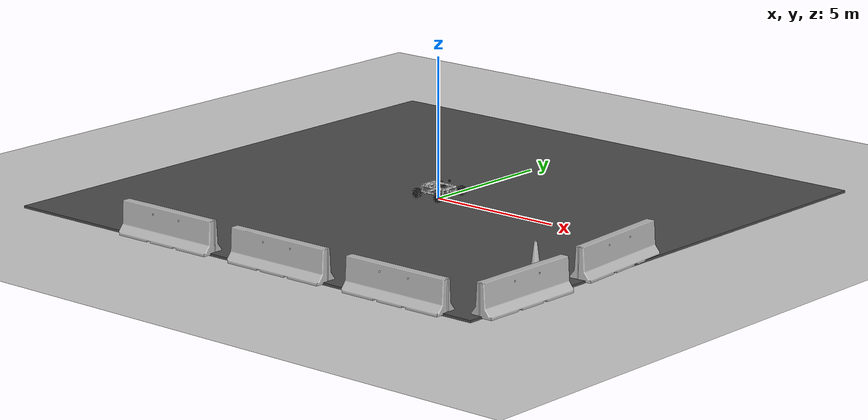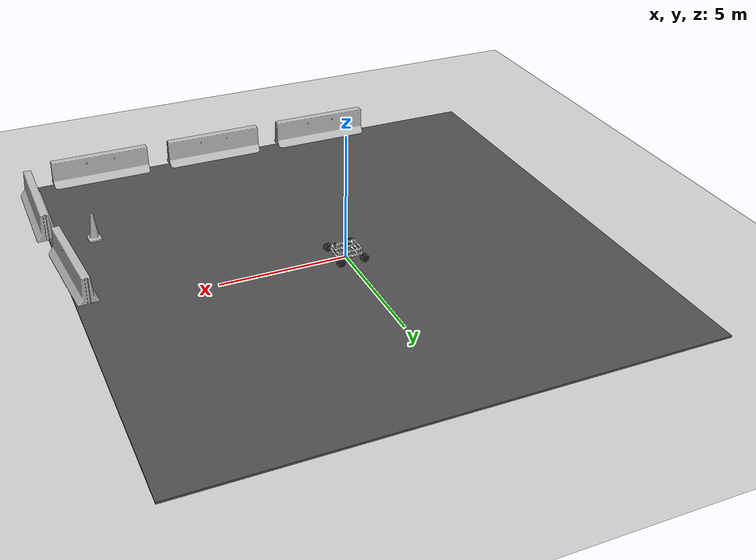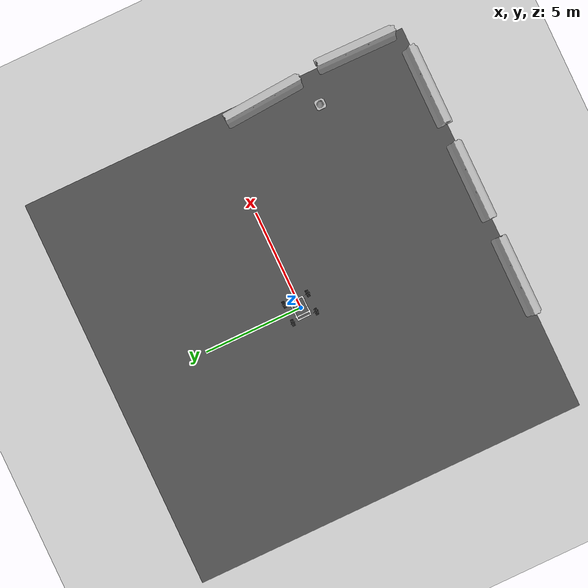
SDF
<sdf version="1.6">
 <world name="default">
  <model name="ground_plane">
   <static>1</static>
   <link name="link">
    <collision name="collision">
     <geometry><plane><normal>0 0 1</normal><size>100 100</size></plane></geometry>
     <surface><friction><ode><mu>100</mu><mu2>50</mu2></ode></friction></surface>
    </collision>
    <visual name="visual">
     <cast_shadows>0</cast_shadows>
     <geometry><plane><normal>0 0 1</normal><size>100 100</size></plane></geometry>
     <material>
      <script><uri>file://media/materials/scripts/gazebo.material</uri><name>Gazebo/Grey</name></script>
     </material>
    </visual>
    <velocity_decay><linear>0</linear><angular>0</angular></velocity_decay>
   </link>
  </model>
  <model name="jersey_barrier_0">
   <static>1</static>
   <link name="link">
    <visual name="visual">
     <geometry><mesh><uri>model://jersey_barrier/meshes/jersey_barrier.dae</uri></mesh></geometry>
    </visual>
    <collision name="upright">
     <pose>0 0 0.5715 0 -0 0</pose>
     <geometry><box><size>4.06542 0.3063 1.143</size></box></geometry>
    </collision>
    <collision name="base">
     <pose>0 0 0.032258 0 -0 0</pose>
     <geometry><box><size>4.06542 0.8107 0.064516</size></box></geometry>
    </collision>
    <collision name="base2">
     <pose>0 0 0.1 0 -0 0</pose>
     <geometry><box><size>4.06542 0.65 0.1</size></box></geometry>
    </collision>
    <collision name="base3">
     <pose>0 0 0.2 0 -0 0</pose>
     <geometry><box><size>4.06542 0.5 0.1</size></box></geometry>
    </collision>
    <collision name="left-angle">
     <pose>0 -0.224 0.2401 0.9 -0 0</pose>
     <geometry><box><size>4.06542 0.5 0.064516</size></box></geometry>
    </collision>
    <collision name="right-angle">
     <pose>0 0.224 0.2401 -0.9 0 0</pose>
     <geometry><box><size>4.06542 0.5 0.064516</size></box></geometry>
    </collision>
    <velocity_decay><linear>0</linear><angular>0</angular></velocity_decay>
   </link>
   <pose>-3 -10 0 0 -0 0</pose>
  </model>
  <model name="jersey_barrier_1">
   <static>1</static>
   <link name="link">
    <visual name="visual">
     <geometry><mesh><uri>model://jersey_barrier/meshes/jersey_barrier.dae</uri></mesh></geometry>
    </visual>
    <collision name="upright">
     <pose>0 0 0.5715 0 -0 0</pose>
     <geometry><box><size>4.06542 0.3063 1.143</size></box></geometry>
    </collision>
    <collision name="base">
     <pose>0 0 0.032258 0 -0 0</pose>
     <geometry><box><size>4.06542 0.8107 0.064516</size></box></geometry>
    </collision>
    <collision name="base2">
     <pose>0 0 0.1 0 -0 0</pose>
     <geometry><box><size>4.06542 0.65 0.1</size></box></geometry>
    </collision>
    <collision name="base3">
     <pose>0 0 0.2 0 -0 0</pose>
     <geometry><box><size>4.06542 0.5 0.1</size></box></geometry>
    </collision>
    <collision name="left-angle">
     <pose>0 -0.224 0.2401 0.9 -0 0</pose>
     <geometry><box><size>4.06542 0.5 0.064516</size></box></geometry>
    </collision>
    <collision name="right-angle">
     <pose>0 0.224 0.2401 -0.9 0 0</pose>
     <geometry><box><size>4.06542 0.5 0.064516</size></box></geometry>
    </collision>
    <velocity_decay><linear>0</linear><angular>0</angular></velocity_decay>
   </link>
   <pose>2 -10 0 0 -0 0</pose>
  </model>
  <model name="jersey_barrier_2">
   <static>1</static>
   <link name="link">
    <visual name="visual">
     <geometry><mesh><uri>model://jersey_barrier/meshes/jersey_barrier.dae</uri></mesh></geometry>
    </visual>
    <collision name="upright">
     <pose>0 0 0.5715 0 -0 0</pose>
     <geometry><box><size>4.06542 0.3063 1.143</size></box></geometry>
    </collision>
    <collision name="base">
     <pose>0 0 0.032258 0 -0 0</pose>
     <geometry><box><size>4.06542 0.8107 0.064516</size></box></geometry>
    </collision>
    <collision name="base2">
     <pose>0 0 0.1 0 -0 0</pose>
     <geometry><box><size>4.06542 0.65 0.1</size></box></geometry>
    </collision>
    <collision name="base3">
     <pose>0 0 0.2 0 -0 0</pose>
     <geometry><box><size>4.06542 0.5 0.1</size></box></geometry>
    </collision>
    <collision name="left-angle">
     <pose>0 -0.224 0.2401 0.9 -0 0</pose>
     <geometry><box><size>4.06542 0.5 0.064516</size></box></geometry>
    </collision>
    <collision name="right-angle">
     <pose>0 0.224 0.2401 -0.9 0 0</pose>
     <geometry><box><size>4.06542 0.5 0.064516</size></box></geometry>
    </collision>
    <velocity_decay><linear>0</linear><angular>0</angular></velocity_decay>
   </link>
   <pose>7 -10 0 0 -0 0</pose>
  </model>
  <model name="jersey_barrier_7">
   <static>1</static>
   <link name="link">
    <visual name="visual">
     <geometry><mesh><uri>model://jersey_barrier/meshes/jersey_barrier.dae</uri></mesh></geometry>
    </visual>
    <collision name="upright">
     <pose>0 0 0.5715 0 -0 0</pose>
     <geometry><box><size>4.06542 0.3063 1.143</size></box></geometry>
    </collision>
    <collision name="base">
     <pose>0 0 0.032258 0 -0 0</pose>
     <geometry><box><size>4.06542 0.8107 0.064516</size></box></geometry>
    </collision>
    <collision name="base2">
     <pose>0 0 0.1 0 -0 0</pose>
     <geometry><box><size>4.06542 0.65 0.1</size></box></geometry>
    </collision>
    <collision name="base3">
     <pose>0 0 0.2 0 -0 0</pose>
     <geometry><box><size>4.06542 0.5 0.1</size></box></geometry>
    </collision>
    <collision name="left-angle">
     <pose>0 -0.224 0.2401 0.9 -0 0</pose>
     <geometry><box><size>4.06542 0.5 0.064516</size></box></geometry>
    </collision>
    <collision name="right-angle">
     <pose>0 0.224 0.2401 -0.9 0 0</pose>
     <geometry><box><size>4.06542 0.5 0.064516</size></box></geometry>
    </collision>
    <velocity_decay><linear>0</linear><angular>0</angular></velocity_decay>
   </link>
   <pose>9.74902 -2.57759 0 0 -0 1.64</pose>
  </model>
  <model name="jersey_barrier_12">
   <static>1</static>
   <link name="link">
    <visual name="visual">
     <geometry><mesh><uri>model://jersey_barrier/meshes/jersey_barrier.dae</uri></mesh></geometry>
    </visual>
    <collision name="upright">
     <pose>0 0 0.5715 0 -0 0</pose>
     <geometry><box><size>4.06542 0.3063 1.143</size></box></geometry>
    </collision>
    <collision name="base">
     <pose>0 0 0.032258 0 -0 0</pose>
     <geometry><box><size>4.06542 0.8107 0.064516</size></box></geometry>
    </collision>
    <collision name="base2">
     <pose>0 0 0.1 0 -0 0</pose>
     <geometry><box><size>4.06542 0.65 0.1</size></box></geometry>
    </collision>
    <collision name="base3">
     <pose>0 0 0.2 0 -0 0</pose>
     <geometry><box><size>4.06542 0.5 0.1</size></box></geometry>
    </collision>
    <collision name="left-angle">
     <pose>0 -0.224 0.2401 0.9 -0 0</pose>
     <geometry><box><size>4.06542 0.5 0.064516</size></box></geometry>
    </collision>
    <collision name="right-angle">
     <pose>0 0.224 0.2401 -0.9 0 0</pose>
     <geometry><box><size>4.06542 0.5 0.064516</size></box></geometry>
    </collision>
    <velocity_decay><linear>0</linear><angular>0</angular></velocity_decay>
   </link>
   <pose>10.0879 -7.62159 0 0 -0 1.56</pose>
  </model>
  <model name="asphalt_plane">
   <static>1</static>
   <link name="link">
    <collision name="collision"><geometry><box><size>20 20 0.1</size></box></geometry></collision>
    <visual name="visual">
     <cast_shadows>0</cast_shadows>
     <geometry><box><size>20 20 0.1</size></box></geometry>
     <material>
      <script>
       <uri>model://asphalt_plane/materials/scripts</uri>
       <uri>model://asphalt_plane/materials/textures</uri>
       <name>vrc/asphalt</name>
      </script>
     </material>
    </visual>
    <velocity_decay><linear>0</linear><angular>0</angular></velocity_decay>
   </link>
   <pose>0.076733 -0.110379 0 0 -0 0</pose>
  </model>
  <model name="Construction Cone_1">
   <link name="link">
    <collision name="collision">
     <geometry>
      <mesh><scale>10 10 10</scale><uri>model://construction_cone/meshes/construction_cone.dae</uri></mesh>
     </geometry>
    </collision>
    <visual name="visual">
     <geometry>
      <mesh><scale>10 10 10</scale><uri>model://construction_cone/meshes/construction_cone.dae</uri></mesh>
     </geometry>
    </visual>
    <velocity_decay><linear>0</linear><angular>0</angular></velocity_decay>
    <inertial>
     <inertia><ixx>1</ixx><ixy>0</ixy><ixz>0</ixz><iyy>1</iyy><iyz>0</iyz><izz>1</izz></inertia>
     <mass>1</mass>
    </inertial>
   </link>
   <pose>8.42887 -5 0.04902 1e-06 -0 1e-06</pose>
   <static>0</static>
  </model>
  <model name="shigu">
   <link name="base_link">
    <inertial>
     <pose>0.011921 -0.046137 0.130969 0 -0 0</pose>
     <mass>82.0823</mass>
     <inertia>
      <ixx>2.97915</ixx>
      <ixy>-0.0749579</ixy>
      <ixz>-0.215638</ixz>
      <iyy>3.98855</iyy>
      <iyz>-0.283184</iyz>
      <izz>4.60635</izz>
     </inertia>
    </inertial>
    <collision name="base_link_collision">
     <geometry>
      <mesh><scale>1 1 1</scale><uri>/home/zjd/ShiGu_ws/src/shigu_description/meshes/base_link.STL</uri></mesh>
     </geometry>
    </collision>
    <collision name="base_link_fixed_joint_lump__lidar1_link_collision_1">
     <pose>0.45135 -0.00086 0.420001 0 -0 0</pose>
     <geometry>
      <mesh><scale>1 1 1</scale><uri>/home/zjd/ShiGu_ws/src/shigu_description/meshes/lidar1_link.STL</uri></mesh>
     </geometry>
    </collision>
    <visual name="base_link_visual">
     <geometry>
      <mesh><scale>1 1 1</scale><uri>/home/zjd/ShiGu_ws/src/shigu_description/meshes/base_link.STL</uri></mesh>
     </geometry>
     <material>
      <script><name>Gazebo/White</name><uri>file://media/materials/scripts/gazebo.material</uri></script>
     </material>
    </visual>
    <visual name="base_link_fixed_joint_lump__lidar1_link_visual_1">
     <pose>0.45135 -0.00086 0.420001 0 -0 0</pose>
     <geometry>
      <mesh><scale>1 1 1</scale><uri>/home/zjd/ShiGu_ws/src/shigu_description/meshes/lidar1_link.STL</uri></mesh>
     </geometry>
     <material>
      <script><name>Gazebo/Black</name><uri>file://media/materials/scripts/gazebo.material</uri></script>
     </material>
    </visual>
    <sensor name="rplidar" type="ray">
     <visualize>0</visualize>
     <update_rate>5.5</update_rate>
     <ray>
      <scan>
       <horizontal>
        <samples>360</samples>
        <resolution>1</resolution>
        <min_angle>-3.14</min_angle>
        <max_angle>3.14</max_angle>
       </horizontal>
       <vertical><samples>1</samples><min_angle>0</min_angle><max_angle>0</max_angle></vertical>
      </scan>
      <range><min>0.4</min><max>10</max><resolution>0.01</resolution></range>
      <noise><type>gaussian</type><mean>0</mean><stddev>0.01</stddev></noise>
     </ray>
     <plugin name="gazebo_rplidar" filename="libgazebo_ros_laser.so">
      <topicName>/scan</topicName>
      <frameName>lidar1_link</frameName>
      <robotNamespace>/</robotNamespace>
     </plugin>
     <pose>0.45135 -0.00086 0.420001 0 -0 0</pose>
    </sensor>
   </link>
   <link name="front_left_Link">
    <pose>0.474205 0.54669 -0.023755 0 -0 0</pose>
    <inertial>
     <pose>-0 0.077449 -0 0 -0 0</pose>
     <mass>26.853</mass>
     <inertia>
      <ixx>0.1921</ixx>
      <ixy>3.1242e-16</ixy>
      <ixz>-8.6014e-11</ixz>
      <iyy>0.27647</iyy>
      <iyz>2.9337e-16</iyz>
      <izz>0.1921</izz>
     </inertia>
    </inertial>
    <collision name="front_left_Link_collision">
     <geometry>
      <mesh>
       <scale>1 1 1</scale>
       <uri>/home/zjd/ShiGu_ws/src/shigu_description/meshes/front_left_Link.STL</uri>
      </mesh>
     </geometry>
    </collision>
    <visual name="front_left_Link_visual">
     <geometry>
      <mesh>
       <scale>1 1 1</scale>
       <uri>/home/zjd/ShiGu_ws/src/shigu_description/meshes/front_left_Link.STL</uri>
      </mesh>
     </geometry>
     <material>
      <script><name>Gazebo/Black</name><uri>file://media/materials/scripts/gazebo.material</uri></script>
     </material>
    </visual>
   </link>
   <joint name="front_left_joint" type="revolute">
    <child>front_left_Link</child>
    <parent>base_link</parent>
    <axis>
     <xyz>0 1 0</xyz>
     <limit><lower>-1e+16</lower><upper>1e+16</upper></limit>
     <dynamics><spring_reference>0</spring_reference><spring_stiffness>0</spring_stiffness></dynamics>
     <use_parent_model_frame>1</use_parent_model_frame>
    </axis>
   </joint>
   <link name="front_right_Link">
    <pose>0.474205 -0.54731 -0.023755 0 -0 0</pose>
    <inertial>
     <pose>0 -0.077449 0 0 -0 0</pose>
     <mass>26.853</mass>
     <inertia>
      <ixx>0.1921</ixx>
      <ixy>-3.7951e-16</ixy>
      <ixz>-9.8199e-11</ixz>
      <iyy>0.27647</iyy>
      <iyz>-4.905e-16</iyz>
      <izz>0.1921</izz>
     </inertia>
    </inertial>
    <collision name="front_right_Link_collision">
     <geometry>
      <mesh>
       <scale>1 1 1</scale>
       <uri>/home/zjd/ShiGu_ws/src/shigu_description/meshes/front_right_Link.STL</uri>
      </mesh>
     </geometry>
    </collision>
    <visual name="front_right_Link_visual">
     <geometry>
      <mesh>
       <scale>1 1 1</scale>
       <uri>/home/zjd/ShiGu_ws/src/shigu_description/meshes/front_right_Link.STL</uri>
      </mesh>
     </geometry>
     <material>
      <script><name>Gazebo/Black</name><uri>file://media/materials/scripts/gazebo.material</uri></script>
     </material>
    </visual>
   </link>
   <joint name="front_right_joint" type="revolute">
    <child>front_right_Link</child>
    <parent>base_link</parent>
    <axis>
     <xyz>0 1 0</xyz>
     <limit><lower>-1e+16</lower><upper>1e+16</upper></limit>
     <dynamics><spring_reference>0</spring_reference><spring_stiffness>0</spring_stiffness></dynamics>
     <use_parent_model_frame>1</use_parent_model_frame>
    </axis>
   </joint>
   <link name="rear_left_Link">
    <pose>-0.48093 0.54669 -0.030396 0 -0 0</pose>
    <inertial>
     <pose>-0 0.077449 0 0 -0 0</pose>
     <mass>26.853</mass>
     <inertia>
      <ixx>0.1921</ixx>
      <ixy>3.4985e-16</ixy>
      <ixz>4.0527e-14</ixz>
      <iyy>0.27647</iyy>
      <iyz>2.0244e-16</iyz>
      <izz>0.1921</izz>
     </inertia>
    </inertial>
    <collision name="rear_left_Link_collision">
     <geometry>
      <mesh><scale>1 1 1</scale><uri>/home/zjd/ShiGu_ws/src/shigu_description/meshes/rear_left_Link.STL</uri></mesh>
     </geometry>
    </collision>
    <visual name="rear_left_Link_visual">
     <geometry>
      <mesh><scale>1 1 1</scale><uri>/home/zjd/ShiGu_ws/src/shigu_description/meshes/rear_left_Link.STL</uri></mesh>
     </geometry>
     <material>
      <script><name>Gazebo/Black</name><uri>file://media/materials/scripts/gazebo.material</uri></script>
     </material>
    </visual>
   </link>
   <joint name="rear_left_joint" type="revolute">
    <child>rear_left_Link</child>
    <parent>base_link</parent>
    <axis>
     <xyz>0 1 0</xyz>
     <limit><lower>-1e+16</lower><upper>1e+16</upper></limit>
     <dynamics><spring_reference>0</spring_reference><spring_stiffness>0</spring_stiffness></dynamics>
     <use_parent_model_frame>1</use_parent_model_frame>
    </axis>
   </joint>
   <link name="rear_right_Link">
    <pose>-0.48093 -0.54731 -0.030396 0 -0 0</pose>
    <inertial>
     <pose>0 -0.077449 -0 0 -0 0</pose>
     <mass>26.853</mass>
     <inertia>
      <ixx>0.1921</ixx>
      <ixy>-4.0883e-16</ixy>
      <ixz>-5.5721e-11</ixz>
      <iyy>0.27647</iyy>
      <iyz>-2.247e-16</iyz>
      <izz>0.1921</izz>
     </inertia>
    </inertial>
    <collision name="rear_right_Link_collision">
     <geometry>
      <mesh>
       <scale>1 1 1</scale>
       <uri>/home/zjd/ShiGu_ws/src/shigu_description/meshes/rear_right_Link.STL</uri>
      </mesh>
     </geometry>
    </collision>
    <visual name="rear_right_Link_visual">
     <geometry>
      <mesh>
       <scale>1 1 1</scale>
       <uri>/home/zjd/ShiGu_ws/src/shigu_description/meshes/rear_right_Link.STL</uri>
      </mesh>
     </geometry>
     <material>
      <script><name>Gazebo/Black</name><uri>file://media/materials/scripts/gazebo.material</uri></script>
     </material>
    </visual>
   </link>
   <joint name="rear_right_joint" type="revolute">
    <child>rear_right_Link</child>
    <parent>base_link</parent>
    <axis>
     <xyz>0 1 0</xyz>
     <limit><lower>-1e+16</lower><upper>1e+16</upper></limit>
     <dynamics><spring_reference>0</spring_reference><spring_stiffness>0</spring_stiffness></dynamics>
     <use_parent_model_frame>1</use_parent_model_frame>
    </axis>
   </joint>
   <plugin name="gazebo_ros_control" filename="libgazebo_ros_control.so">
    <robotNamespace>/</robotNamespace>
    <robotParam>robot_description</robotParam>
    <robotSimType>gazebo_ros_control/DefaultRobotHWSim</robotSimType>
   </plugin>
   <plugin name="joint_state_publisher" filename="libgazebo_ros_joint_state_publisher.so">
    <jointName>front_left_joint, rear_left_joint, front_right_joint, rear_right_joint</jointName>
    <updateRate>50.0</updateRate>
    <robotNamespace>/</robotNamespace>
    <alwaysOn>1</alwaysOn>
   </plugin>
   <plugin name="imu_controller" filename="libhector_gazebo_ros_imu.so">
    <robotNamespace>/</robotNamespace>
    <updateRate>50.0</updateRate>
    <bodyName>base_link</bodyName>
    <topicName>imu/data</topicName>
    <accelDrift>0.005 0.005 0.005</accelDrift>
    <accelGaussianNoise>0.005 0.005 0.005</accelGaussianNoise>
    <rateDrift>0.005 0.005 0.005</rateDrift>
    <rateGaussianNoise>0.005 0.005 0.005</rateGaussianNoise>
    <headingDrift>0.005</headingDrift>
    <headingGaussianNoise>0.005</headingGaussianNoise>
   </plugin>
   <plugin name="gps_controller" filename="libhector_gazebo_ros_gps.so">
    <robotNamespace>/</robotNamespace>
    <updateRate>40</updateRate>
    <bodyName>base_link</bodyName>
    <frameId>base_link</frameId>
    <topicName>navsat/fix</topicName>
    <velocityTopicName>navsat/vel</velocityTopicName>
    <referenceLatitude>31.0</referenceLatitude>
    <referenceLongitude>121.4</referenceLongitude>
    <referenceHeading>0</referenceHeading>
    <referenceAltitude>10</referenceAltitude>
    <drift>0.0001 0.0001 0.0001</drift>
   </plugin>
   <static>0</static>
   <plugin name="magnetic_controller" filename="libhector_gazebo_ros_magnetic.so">
    <updateRate>40</updateRate>
    <bodyName>base_link</bodyName>
    <robotNamespace>/</robotNamespace>
    <topicName>magnetic/fix</topicName>
    <magnitude>1.0</magnitude>
    <referenceHeading>0</referenceHeading>
    <declination>0</declination>
    <inclination>60.0</inclination>
    <drift>0.0001 0.0001 0.0001</drift>
   </plugin>
   <pose>0.002546 0.033771 0.25189 0.000205 0.007012 0.006274</pose>
  </model>
 </world>
</sdf>
